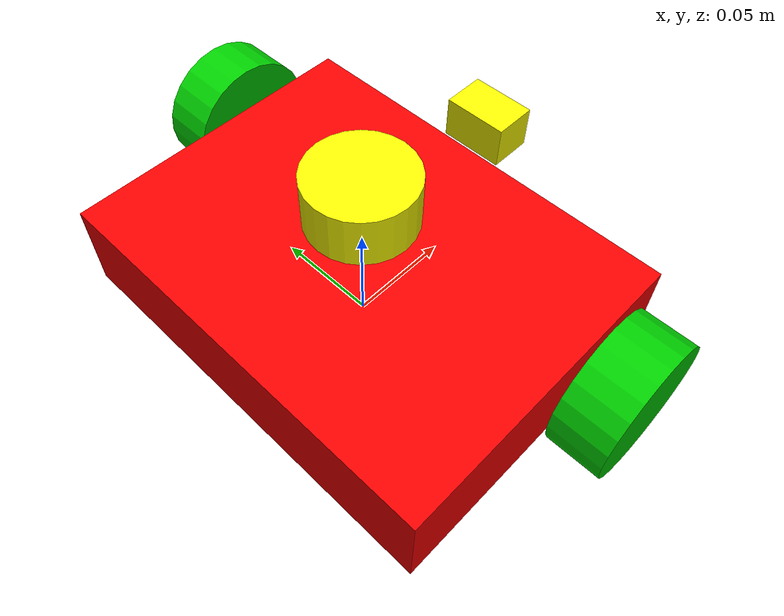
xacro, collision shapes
<?xml version="1.0"?>
<!--Differential Drive Robot Definition-->
<!--Author: Sreejith S-->
<!--Date: Fri 15 May 2020 17:26:48 UTC-->

<robot name="diff_drive_bot" xmlns:xacro="http://www.ros.org/wiki/xacro">

    <!--Materials-->
    <xacro:include filename="$(find custom_bot)/urdf/materials.xacro"/>
    <xacro:include filename="$(find custom_bot)/urdf/gazebo.xacro"/>
    <!--Properties-->
    <xacro:property name="wheel_radius" value="0.032"/>
    <xacro:property name="wheel_width" value="0.025"/>
    <xacro:property name="laser_radius" value="0.025"/>
    <xacro:property name="laser_height" value="0.025"/>
    <xacro:property name="camera_dim" value="0.02 0.03 0.02"/>
    <xacro:property name="pi_rads" value="3.14159"/>
    <!--Macros-->
    <xacro:macro name="cylinder_inertia" params="mass r l">
        <inertia ixx="${mass*(3*r*r+l*l)/12}" ixy="0" ixz="0"
            iyy="${mass*(3*r*r+l*l)/12}" iyz="0.0"
            izz="${mass*(r*r)/2}"/>
    </xacro:macro>

  <link name="base_footprint">
    <visual>
      <origin rpy="0 0 0" xyz="0 0 0"/>
      <geometry>
        <box size="0.001 0.001 0.001"/>
      </geometry>
    </visual>
  </link>

    <link name="base_link">
        <visual>
            <origin rpy="1.57079632679 0 1.57079632679 " xyz="0 0 0"/>
            <geometry>
                <mesh filename="package://custom_bot/meshes/Robot_chassis.STL" scale="0.001 0.001 0.001"/>
            </geometry>
            <material name="red"/>
        </visual>
        <inertial>
            <origin rpy="1.57079632679 0 1.57079632679 " xyz="0 0 0"/>
            <mass value="1"/>
            <inertia ixx="0.015" ixy="0" ixz="0" iyy="0.0375" iyz="0" izz="0.0375"/>
        </inertial>
        <collision>
            <origin rpy="0 0 0" xyz="0 0 -0.027"/>
            <geometry>
                <box size="0.15 .20 .045"/>
            </geometry>
        </collision>
    </link>

    <link name="front_castor_of_wheel">
        <visual>
            <origin rpy="0 0 0" xyz="0 0 -0.009375"/>
            <geometry>
                <cylinder radius="0.00625" length="0.01875"/>
            </geometry>
            <material name="white"/>
        </visual>
        <inertial>
            <origin rpy="0 0 0" xyz="0 0 -0.009375"/>
            <mass value="1"/>
            <inertia ixx="0.00083" ixy="0" ixz="0" iyy="0.00083" iyz="0" izz="0.000167"/>
        </inertial>
         <collision>
            <origin rpy="0 0 0" xyz="0 0 -0.009375"/>
            <geometry>
                <cylinder radius="0.00625" length="0.01875"/>
            </geometry>
        </collision>
    </link>

    <link name="front_wheel">
        <visual>
            <origin rpy="0 0 0" xyz="0 0 0"/>
            <geometry>
                <sphere radius="0.00625"/>
            </geometry>
            <material name="blue"/>
        </visual>
        <inertial>
            <mass value="1"/>
            <inertia ixx="5.1458e-5" ixy="0" ixz="0" iyy="5.1458e-5" iyz="0.0" izz="6.125e-5"/>
        </inertial>
        <collision>
            <geometry>
                <sphere radius="0.00625"/>
            </geometry>
        </collision>
    </link>

    <link name="right_wheel">
        <visual>
            <origin rpy="0 0 0" xyz="0 0 0"/>
            <geometry>
                <mesh filename="package://custom_bot/meshes/wheel.STL" scale="1 1 1"/>
            </geometry>
            <material name="green"/>
        </visual>
        <inertial>
            <mass value="1"/>
            <inertia ixx="5.1458e-5" ixy="0" ixz="0" iyy="5.1458e-5" iyz="0.0" izz="6.125e-5"/>
        </inertial>
        <collision>
            <origin rpy="0 0 0" xyz="0 0 0.0125"/>
            <geometry>
                <cylinder radius="${wheel_radius}" length="${wheel_width}"/>
            </geometry>
        </collision>
    </link>

    <link name="left_wheel">
        <visual>
            <origin rpy="0 0 0" xyz="0 0 0"/>
            <geometry>
                <mesh filename="package://custom_bot/meshes/wheel.STL" scale="1 1 1"/>
            </geometry>
            <material name="green"/>
        </visual>
        <inertial>
            <mass value="1"/>
            <inertia ixx="5.1458e-5" ixy="0" ixz="0" iyy="5.1458e-5" iyz="0.0" izz="6.125e-5"/>
        </inertial>
        <collision>
            <origin rpy="0 0 0" xyz="0 0 0.0125"/>
            <geometry>
                <cylinder radius="${wheel_radius}" length="${wheel_width}"/>
            </geometry>
        </collision>
    </link>

    <link name="sensor_laser">
        <visual>
            <origin rpy="0 0 0" xyz="0 0 0"/>
            <geometry>
                <cylinder radius="${laser_radius}" length="${laser_height}"/>
            </geometry>
            <material name="yellow"/>
        </visual>
        <inertial>
            <mass value="1"/>
            <xacro:cylinder_inertia mass="1" r="${laser_radius}" l="${laser_height}"/>
        </inertial>
        <collision>
            <origin rpy="0 0 0" xyz="0 0 0.0125"/>
            <geometry>
                <cylinder radius="${laser_radius}" length="${laser_height}"/>
            </geometry>
        </collision>
    </link>

    <link name="sensor_camera">
        <visual>
            <origin rpy="0 0 0" xyz="0 0 0"/>
            <geometry>
                <box size="${camera_dim}"/>
            </geometry>
            <material name="yellow"/>
        </visual>
        <inertial>
            <mass value="1"/>
            <inertia ixx="1e-6" ixy="0" ixz="0" iyy="1e-6" iyz="0" izz="1e-6" />
        </inertial>
        <collision>
            <origin rpy="0 0 0" xyz="0 0 0.0125"/>
            <geometry>
                <box size="${camera_dim}"/>
            </geometry>
        </collision>
    </link>

    <joint name="base_foorprint_to_base_link" type="fixed">
        <origin xyz="0 0 0.0512"/>
        <parent link="base_footprint"/>
        <child link="base_link"/>
    </joint>

    <joint name="base_to_castor_socket" type="fixed">
        <origin xyz="-0.05 0 -0.025"/>
        <parent link="base_link"/>
        <child link="front_castor_of_wheel"/>
    </joint>

    <joint name="castor_socket_to_front_wheel" type="fixed">
        <origin xyz="0 0 -0.01875"/>
        <parent link="front_castor_of_wheel"/>
        <child link="front_wheel"/>
    </joint>

    <joint name="base_link_to_right_wheel" type="continuous">
        <origin rpy="-1.57079632679 0  0 " xyz="0.0267 -0.13 -0.02"/>
        <axis xyz="0 0 1 "/>
        <parent link="base_link"/>
        <child link="right_wheel"/>
    </joint>

    <joint name="base_link_to_left_wheel" type="continuous">
        <origin rpy="1.57079632679 0  0 " xyz="0.0267 0.13 -0.02"/>
        <axis xyz="0 0 -1 "/>
        <parent link="base_link"/>
        <child link="left_wheel"/>
    </joint>

    <joint name="base_link_to_laser" type="fixed">
        <origin rpy="0 0  0 " xyz="0.0 0.0 ${laser_height/2}"/>
        <axis xyz="0 0 0 "/>
        <parent link="base_link"/>
        <child link="sensor_laser"/>
    </joint>

    <joint name="base_link_to_camera" type="fixed">
        <origin rpy="0 0 0" xyz="0.08 0.0 0.0"/>
        <axis xyz="0 0 0 "/>
        <parent link="base_link"/>
        <child link="sensor_camera"/>
    </joint>

</robot>

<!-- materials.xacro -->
<!--Differential Drive Robot Materials Definition-->
<!--Author: Sreejith S-->
<!--Date: Fri 15 May 2020 17:26:48 UTC-->

<robot name="diff_drive_bot" xmlns:xacro="http://www.ros.org/wiki/xacro">

  <!--Materials color predefined-->
  <material name="black">
    <color rgba="0.0 0.0 0.0 1.0"/>
  </material>
  <material name="blue">
    <color rgba="0 0 0.8 1.0"/>
  </material>
  <material name="green">
    <color rgba="0.0 0.8 0.0 1.0"/>
  </material>
  <material name="red">
    <color rgba="1.0 0 0 1.0"/>
  </material>
  <material name="white">
    <color rgba="1.0 1.0 1.0 1.0"/>
  </material>
  <material name="yellow">
    <color rgba="1.0 1.0 0.0 1.0"/>
  </material>
</robot>
